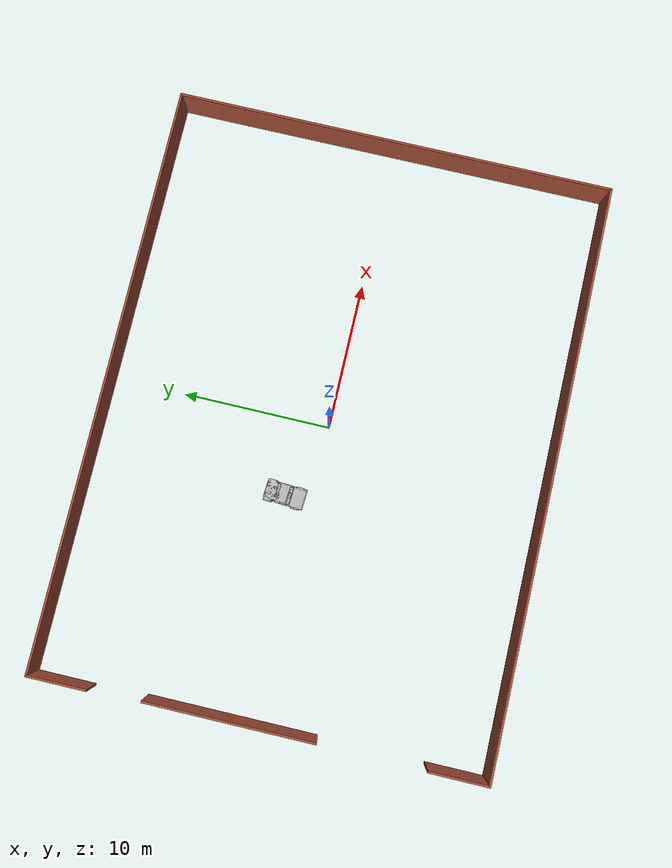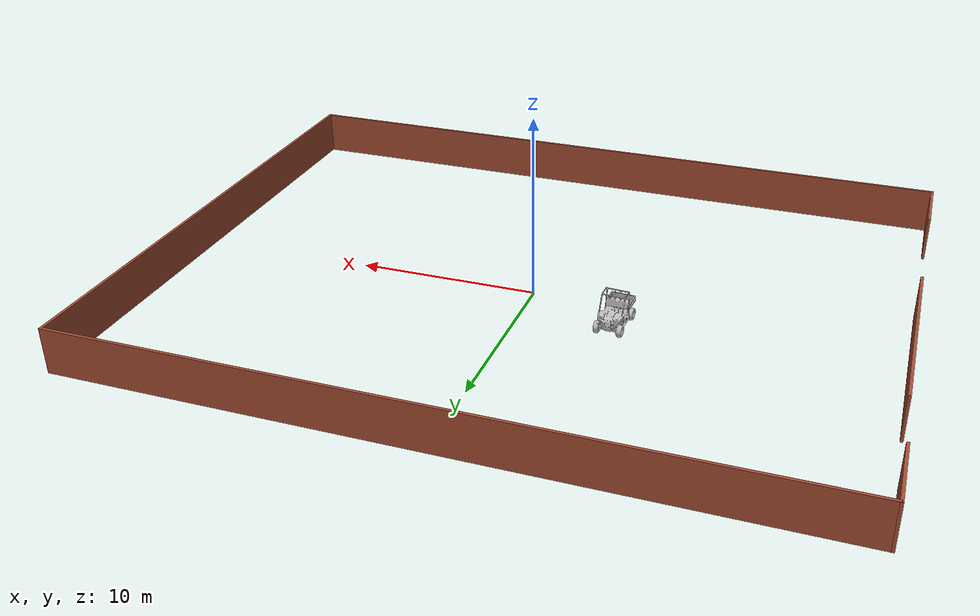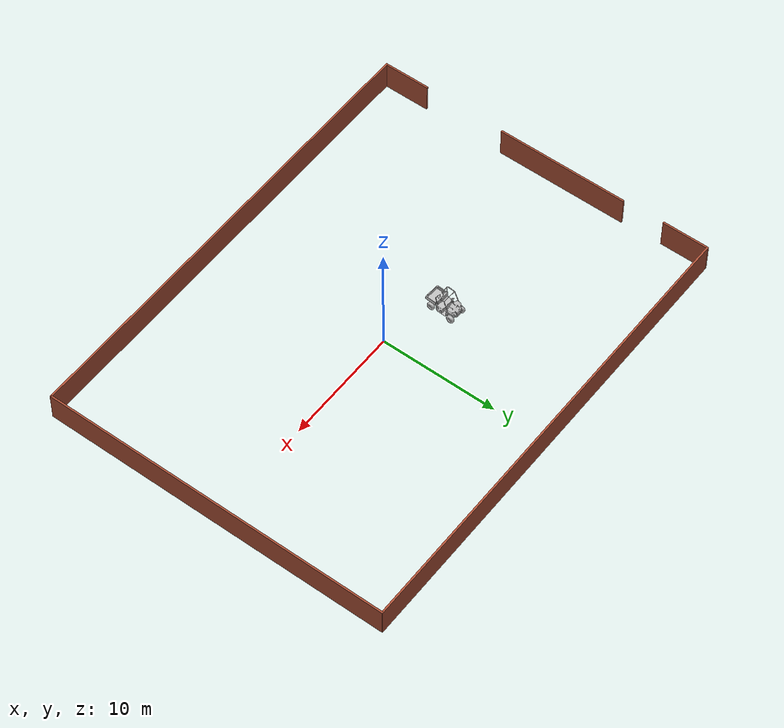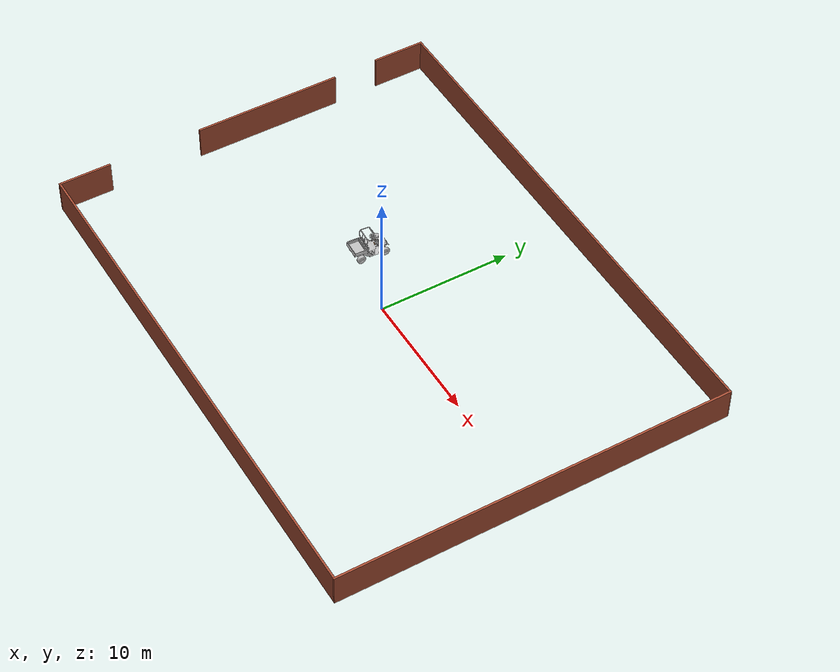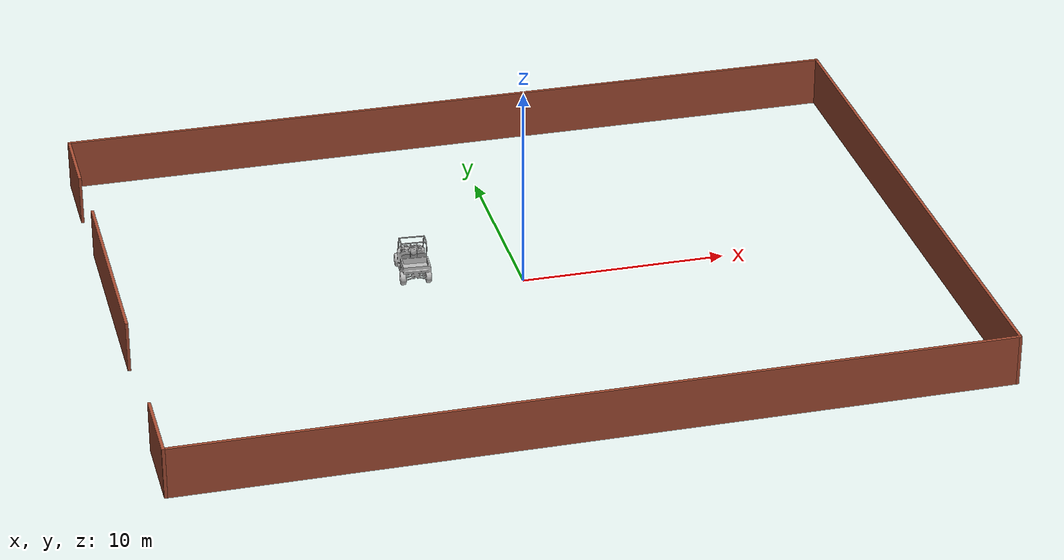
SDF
<sdf version="1.6">
 <world name="default">
  <model name="garage">
   <pose>-0.1012 0.05082 0 0 -0 0</pose>
   <link name="Wall_10">
    <collision name="Wall_10_Collision">
     <geometry><box><size>11.25 0.15 2.5</size></box></geometry>
     <pose>0 0 1.25 0 -0 0</pose>
    </collision>
    <visual name="Wall_10_Visual">
     <pose>0 0 1.25 0 -0 0</pose>
     <geometry><box><size>11.25 0.15 2.5</size></box></geometry>
     <material>
      <script><uri>file://media/materials/scripts/gazebo.material</uri><name>Gazebo/Bricks</name></script>
      <ambient>1 1 1 1</ambient>
     </material>
    </visual>
    <pose>-19.5828 1.79493 0 0 0 -1.5708</pose>
   </link>
   <link name="Wall_2">
    <collision name="Wall_2_Collision">
     <geometry><box><size>4 0.15 2.5</size></box></geometry>
     <pose>0 0 1.25 0 -0 0</pose>
    </collision>
    <visual name="Wall_2_Visual">
     <pose>0 0 1.25 0 -0 0</pose>
     <geometry><box><size>4 0.15 2.5</size></box></geometry>
     <material>
      <script><uri>file://media/materials/scripts/gazebo.material</uri><name>Gazebo/Bricks</name></script>
      <ambient>1 1 1 1</ambient>
     </material>
    </visual>
    <pose>-19.6442 -12.8901 0 0 0 -1.5708</pose>
   </link>
   <link name="Wall_3">
    <collision name="Wall_3_Collision">
     <geometry><box><size>39.5 0.15 2.5</size></box></geometry>
     <pose>0 0 1.25 0 -0 0</pose>
    </collision>
    <visual name="Wall_3_Visual">
     <pose>0 0 1.25 0 -0 0</pose>
     <geometry><box><size>39.5 0.15 2.5</size></box></geometry>
     <material>
      <script><uri>file://media/materials/scripts/gazebo.material</uri><name>Gazebo/Bricks</name></script>
      <ambient>1 1 1 1</ambient>
     </material>
    </visual>
    <pose>0.030764 -14.8151 0 0 -0 0</pose>
   </link>
   <link name="Wall_4">
    <collision name="Wall_4_Collision">
     <geometry><box><size>29.75 0.15 2.5</size></box></geometry>
     <pose>0 0 1.25 0 -0 0</pose>
    </collision>
    <visual name="Wall_4_Visual">
     <pose>0 0 1.25 0 -0 0</pose>
     <geometry><box><size>29.75 0.15 2.5</size></box></geometry>
     <material>
      <script><uri>file://media/materials/scripts/gazebo.material</uri><name>Gazebo/Bricks</name></script>
      <ambient>1 1 1 1</ambient>
     </material>
    </visual>
    <pose>19.7058 -0.015118 0 0 -0 1.5708</pose>
   </link>
   <link name="Wall_5">
    <collision name="Wall_5_Collision">
     <geometry><box><size>39.5615 0.15 2.5</size></box></geometry>
     <pose>0 0 1.25 0 -0 0</pose>
    </collision>
    <visual name="Wall_5_Visual">
     <pose>0 0 1.25 0 -0 0</pose>
     <geometry><box><size>39.5615 0.15 2.5</size></box></geometry>
     <material>
      <script><uri>file://media/materials/scripts/gazebo.material</uri><name>Gazebo/Bricks</name></script>
      <ambient>1 1 1 1</ambient>
     </material>
    </visual>
    <pose>0 14.8 0 0 -0 3.14083</pose>
   </link>
   <link name="Wall_7">
    <collision name="Wall_7_Collision">
     <geometry><box><size>4 0.15 2.5</size></box></geometry>
     <pose>0 0 1.25 0 -0 0</pose>
    </collision>
    <visual name="Wall_7_Visual">
     <pose>0 0 1.25 0 -0 0</pose>
     <geometry><box><size>4 0.15 2.5</size></box></geometry>
     <material>
      <script><uri>file://media/materials/scripts/gazebo.material</uri><name>Gazebo/Bricks</name></script>
      <ambient>1 1 1 1</ambient>
     </material>
    </visual>
    <pose>-19.7058 12.8901 0 0 0 -1.5708</pose>
   </link>
   <static>1</static>
  </model>
  <model name="polaris_ranger_ev_clone_1_clone_clone_clone_clone_0">
   <static>true</static>
   <link name="chassis">
    <inertial>
     <mass>720</mass>
     <inertia><ixx>140</ixx><ixy>0</ixy><iyy>550</iyy><ixz>0</ixz><iyz>0</iyz><izz>550</izz></inertia>
    </inertial>
    <visual name="visual">
     <pose>0 0 0 0 0 -1.5708</pose>
     <geometry><mesh><uri>model://polaris_ranger_ev/meshes/polaris.dae</uri><scale>1 1 1</scale></mesh></geometry>
     <material>
      <script>
       <uri>model://polaris_ranger_ev/materials/scripts</uri>
       <uri>model://polaris_ranger_ev/materials/textures</uri>
       <name>Polaris/Diffuse</name>
      </script>
     </material>
    </visual>
    <collision name="chassis_bottom">
     <pose>0 0 0.35 0 -0 0</pose>
     <geometry><box><size>2 1 0.1</size></box></geometry>
    </collision>
    <collision name="cargo_bottom">
     <pose>-0.9 0 0.9 0 -0 0</pose>
     <geometry><box><size>0.9 1.2 0.01</size></box></geometry>
    </collision>
    <collision name="cargo_front">
     <pose>-0.45 0 1.025 0 -0 0</pose>
     <geometry><box><size>0.05 1.2 0.25</size></box></geometry>
    </collision>
    <collision name="cargo_back">
     <pose>-1.35 0 1.025 0 -0 0</pose>
     <geometry><box><size>0.05 1.2 0.25</size></box></geometry>
    </collision>
    <collision name="cargo_left">
     <pose>-0.9 0.6 1.025 0 -0 0</pose>
     <geometry><box><size>0.9 0.05 0.25</size></box></geometry>
    </collision>
    <collision name="cargo_right">
     <pose>-0.9 -0.6 1.025 0 -0 0</pose>
     <geometry><box><size>0.9 0.05 0.25</size></box></geometry>
    </collision>
    <collision name="seat">
     <pose>-0.1 0 0.625 0 -0 0</pose>
     <geometry><box><size>0.6 1 0.65</size></box></geometry>
    </collision>
    <collision name="seat_back">
     <pose>-0.3 0 1.125 0 -0.2 0</pose>
     <geometry><box><size>0.1 1 0.4</size></box></geometry>
    </collision>
    <collision name="engine">
     <pose>0.95 0 0.7 0 -0 0</pose>
     <geometry><box><size>0.58 1 0.8</size></box></geometry>
    </collision>
    <collision name="steering_column">
     <pose>0.525 0.3 1.025 0 -0.8 0</pose>
     <geometry><cylinder><radius>0.05</radius><length>0.45</length></cylinder></geometry>
    </collision>
   </link>
   <link name="rear_right_wheel">
    <pose>-0.85 -0.6 0.32 1.5708 -0 0</pose>
    <inertial>
     <mass>12</mass>
     <inertia><ixx>0.5</ixx><ixy>0</ixy><iyy>0.5</iyy><ixz>0</ixz><iyz>0</iyz><izz>1</izz></inertia>
    </inertial>
    <collision name="collision">
     <geometry><cylinder><radius>0.32</radius><length>0.23</length></cylinder></geometry>
     <surface>
      <friction><ode><mu>100000</mu><mu2>100000</mu2><slip1>0</slip1><slip2>0</slip2></ode></friction>
     </surface>
    </collision>
   </link>
   <joint name="rear_right_wheel_joint" type="revolute">
    <pose>0 0 -0.1 0 -0 0</pose>
    <child>rear_right_wheel</child>
    <parent>chassis</parent>
    <axis>
     <xyz>0 1 0</xyz>
     <use_parent_model_frame>1</use_parent_model_frame>
     <limit><lower>-1e+16</lower><upper>1e+16</upper></limit>
     <dynamics><spring_reference>0</spring_reference><spring_stiffness>0</spring_stiffness></dynamics>
    </axis>
    <physics><ode><limit><cfm>0</cfm><erp>0.9</erp></limit></ode></physics>
   </joint>
   <link name="rear_left_wheel">
    <pose>-0.85 0.6 0.32 1.5708 -0 0</pose>
    <inertial>
     <mass>12</mass>
     <inertia><ixx>0.5</ixx><ixy>0</ixy><iyy>0.5</iyy><ixz>0</ixz><iyz>0</iyz><izz>1</izz></inertia>
    </inertial>
    <collision name="collision">
     <geometry><cylinder><radius>0.32</radius><length>0.23</length></cylinder></geometry>
     <surface>
      <friction><ode><mu>100000</mu><mu2>100000</mu2><slip1>0</slip1><slip2>0</slip2></ode></friction>
     </surface>
    </collision>
   </link>
   <joint name="rear_left_wheel_joint" type="revolute">
    <child>rear_left_wheel</child>
    <parent>chassis</parent>
    <axis>
     <xyz>0 1 0</xyz>
     <use_parent_model_frame>1</use_parent_model_frame>
     <limit><lower>-1e+16</lower><upper>1e+16</upper></limit>
     <dynamics><spring_reference>0</spring_reference><spring_stiffness>0</spring_stiffness></dynamics>
    </axis>
    <physics><ode><limit><cfm>0</cfm><erp>0.9</erp></limit></ode></physics>
   </joint>
   <link name="front_right_wheel">
    <pose>1.03 -0.6 0.32 1.5708 -0 0</pose>
    <inertial>
     <mass>12</mass>
     <inertia><ixx>0.5</ixx><ixy>0</ixy><iyy>0.5</iyy><ixz>0</ixz><iyz>0</iyz><izz>1</izz></inertia>
    </inertial>
    <collision name="collision">
     <geometry><cylinder><radius>0.32</radius><length>0.23</length></cylinder></geometry>
     <surface>
      <friction><ode><mu>100000</mu><mu2>100000</mu2><slip1>0</slip1><slip2>0</slip2></ode></friction>
     </surface>
    </collision>
   </link>
   <link name="front_right_wheel_steering_block">
    <pose>1.03 -0.5 0.32 1.5708 -0 0</pose>
    <inertial>
     <mass>1</mass>
     <inertia><ixx>1</ixx><ixy>0</ixy><iyy>1</iyy><ixz>0</ixz><iyz>0</iyz><izz>1</izz></inertia>
    </inertial>
    <collision name="collision">
     <geometry><cylinder><radius>0.05</radius><length>0.01</length></cylinder></geometry>
    </collision>
   </link>
   <joint name="front_right_steering_joint" type="revolute">
    <child>front_right_wheel_steering_block</child>
    <parent>chassis</parent>
    <axis>
     <xyz>0 0 1</xyz>
     <limit><lower>-1</lower><upper>1</upper></limit>
     <use_parent_model_frame>1</use_parent_model_frame>
     <dynamics><spring_reference>0</spring_reference><spring_stiffness>0</spring_stiffness></dynamics>
    </axis>
    <physics><ode><limit><cfm>0</cfm><erp>0.9</erp></limit></ode></physics>
   </joint>
   <joint name="front_right_wheel_joint" type="revolute">
    <child>front_right_wheel</child>
    <parent>front_right_wheel_steering_block</parent>
    <axis>
     <xyz>0 1 0</xyz>
     <use_parent_model_frame>1</use_parent_model_frame>
     <limit><lower>-1e+16</lower><upper>1e+16</upper></limit>
     <dynamics><spring_reference>0</spring_reference><spring_stiffness>0</spring_stiffness></dynamics>
    </axis>
    <physics><ode><limit><cfm>0</cfm><erp>0.9</erp></limit></ode></physics>
   </joint>
   <link name="front_left_wheel">
    <pose>1.03 0.6 0.32 1.5708 -0 0</pose>
    <inertial>
     <mass>12</mass>
     <inertia><ixx>0.5</ixx><ixy>0</ixy><iyy>0.5</iyy><ixz>0</ixz><iyz>0</iyz><izz>1</izz></inertia>
    </inertial>
    <collision name="collision">
     <geometry><cylinder><radius>0.32</radius><length>0.23</length></cylinder></geometry>
     <surface>
      <friction><ode><mu>100000</mu><mu2>100000</mu2><slip1>0</slip1><slip2>0</slip2></ode></friction>
     </surface>
    </collision>
   </link>
   <link name="front_left_wheel_steering_block">
    <pose>1.03 0.5 0.32 1.5708 -0 0</pose>
    <inertial>
     <mass>1</mass>
     <inertia><ixx>1</ixx><ixy>0</ixy><iyy>1</iyy><ixz>0</ixz><iyz>0</iyz><izz>1</izz></inertia>
    </inertial>
    <collision name="collision">
     <geometry><cylinder><radius>0.05</radius><length>0.01</length></cylinder></geometry>
    </collision>
   </link>
   <joint name="front_left_steering_joint" type="revolute">
    <child>front_left_wheel_steering_block</child>
    <parent>chassis</parent>
    <axis>
     <xyz>0 0 1</xyz>
     <limit><lower>-1</lower><upper>1</upper></limit>
     <use_parent_model_frame>1</use_parent_model_frame>
     <dynamics><spring_reference>0</spring_reference><spring_stiffness>0</spring_stiffness></dynamics>
    </axis>
    <physics><ode><limit><cfm>0</cfm><erp>0.9</erp></limit></ode></physics>
   </joint>
   <joint name="front_left_wheel_joint" type="revolute">
    <child>front_left_wheel</child>
    <parent>front_left_wheel_steering_block</parent>
    <axis>
     <xyz>0 1 0</xyz>
     <use_parent_model_frame>1</use_parent_model_frame>
     <limit><lower>-1e+16</lower><upper>1e+16</upper></limit>
     <dynamics><spring_reference>0</spring_reference><spring_stiffness>0</spring_stiffness></dynamics>
    </axis>
    <physics><ode><limit><cfm>0</cfm><erp>0.9</erp></limit></ode></physics>
   </joint>
   <link name="gas_pedal">
    <pose>0.53 0.14 0.56 0 -1 0</pose>
    <gravity>0</gravity>
    <inertial>
     <mass>0.1</mass>
     <inertia><ixx>0.01</ixx><ixy>0</ixy><ixz>0</ixz><iyy>0.01</iyy><iyz>0</iyz><izz>0.01</izz></inertia>
    </inertial>
    <collision name="gas_pedal_collision"><geometry><box><size>0.12 0.07 0.03</size></box></geometry></collision>
    <visual name="gas_pedal_visual">
     <geometry><box><size>0.12 0.07 0.03</size></box></geometry>
     <material>
      <script><uri>file://media/materials/scripts/gazebo.material</uri><name>Gazebo/Wood</name></script>
      <ambient>0.2 0.2 0.2 1</ambient>
      <diffuse>0.2 0.2 0.2 1</diffuse>
      <specular>0.2 0.2 0.2 1</specular>
      <emissive>0.5 0.5 0.5 1</emissive>
     </material>
    </visual>
   </link>
   <link name="brake_pedal">
    <gravity>0</gravity>
    <pose>0.54 0.27 0.58 0 -1 0</pose>
    <inertial>
     <mass>0.1</mass>
     <inertia><ixx>0.01</ixx><ixy>0</ixy><ixz>0</ixz><iyy>0.01</iyy><iyz>0</iyz><izz>0.01</izz></inertia>
    </inertial>
    <collision name="brake_pedal_collision">
     <geometry><box><size>0.06 0.08 0.03</size></box></geometry>
    </collision>
    <visual name="brake_pedal_visual">
     <geometry><box><size>0.06 0.08 0.03</size></box></geometry>
     <material>
      <script><uri>file://media/materials/scripts/gazebo.material</uri><name>Gazebo/Wood</name></script>
      <ambient>0.2 0.2 0.2 1</ambient>
      <diffuse>0.2 0.2 0.2 1</diffuse>
      <specular>0.2 0.2 0.2 1</specular>
      <emissive>0.5 0.5 0.5 1</emissive>
     </material>
    </visual>
   </link>
   <link name="steering_wheel">
    <pose>0.37 0.3 1.2 0 -0.8 0</pose>
    <inertial>
     <mass>1</mass>
     <inertia><ixx>0.1</ixx><ixy>0</ixy><ixz>0</ixz><iyy>0.1</iyy><iyz>0</iyz><izz>1</izz></inertia>
    </inertial>
    <collision name="steering_wheel_post_left">
     <pose>0 0.08 0 1.5708 -0 0</pose>
     <geometry><cylinder><radius>0.02</radius><length>0.15</length></cylinder></geometry>
    </collision>
    <collision name="steering_wheel_post_right">
     <pose>0 -0.08 0 1.5708 -0 0</pose>
     <geometry><cylinder><radius>0.02</radius><length>0.15</length></cylinder></geometry>
    </collision>
    <collision name="steering_wheel_post_middle">
     <pose>-0.08 0 0 3.14159 1.57079 3.14159</pose>
     <geometry><cylinder><radius>0.02</radius><length>0.15</length></cylinder></geometry>
    </collision>
    <collision name="collision00">
     <pose>0.15 0 0 3.14159 1.57079 -1.57079</pose>
     <geometry><cylinder><length>0.105066</length><radius>0.01</radius></cylinder></geometry>
    </collision>
    <collision name="collision01">
     <pose>0.121353 0.088168 0 3.14159 1.57079 -0.942483</pose>
     <geometry><cylinder><length>0.105066</length><radius>0.01</radius></cylinder></geometry>
    </collision>
    <collision name="collision02">
     <pose>0.046353 0.142658 0 3.14159 1.57079 -0.314163</pose>
     <geometry><cylinder><length>0.105066</length><radius>0.01</radius></cylinder></geometry>
    </collision>
    <collision name="collision03">
     <pose>-0.046353 0.142658 0 3.14159 1.57079 0.314163</pose>
     <geometry><cylinder><length>0.105066</length><radius>0.01</radius></cylinder></geometry>
    </collision>
    <collision name="collision04">
     <pose>-0.121353 0.088168 0 -3.14159 1.57079 0.942483</pose>
     <geometry><cylinder><length>0.105066</length><radius>0.01</radius></cylinder></geometry>
    </collision>
    <collision name="collision05">
     <pose>-0.15 0 0 -3.14159 1.57079 1.57079</pose>
     <geometry><cylinder><length>0.105066</length><radius>0.01</radius></cylinder></geometry>
    </collision>
    <collision name="collision06">
     <pose>-0.121353 -0.088168 0 3.14159 1.57079 2.19912</pose>
     <geometry><cylinder><length>0.105066</length><radius>0.01</radius></cylinder></geometry>
    </collision>
    <collision name="collision07">
     <pose>-0.046353 -0.142658 0 -3.14159 1.57079 2.82743</pose>
     <geometry><cylinder><length>0.105066</length><radius>0.01</radius></cylinder></geometry>
    </collision>
    <collision name="collision08">
     <pose>0.046353 -0.142658 0 3.14159 1.57079 -2.82743</pose>
     <geometry><cylinder><length>0.105066</length><radius>0.01</radius></cylinder></geometry>
    </collision>
    <collision name="collision09">
     <pose>0.121353 -0.088168 0 -3.14159 1.57079 -2.19911</pose>
     <geometry><cylinder><length>0.105066</length><radius>0.01</radius></cylinder></geometry>
    </collision>
   </link>
   <link name="hand_brake">
    <pose>0.5 0 1.05 3.14159 -0.058407 3.14159</pose>
    <inertial>
     <mass>1</mass>
     <pose>0 0 -0.15 0 -0 0</pose>
     <inertia><ixx>0.1</ixx><ixy>0</ixy><ixz>0</ixz><iyy>0.1</iyy><iyz>0</iyz><izz>1</izz></inertia>
    </inertial>
    <collision name="hand_brake_collision">
     <pose>0 0 -0.1 0 -0 0</pose>
     <geometry><cylinder><radius>0.01</radius><length>0.2</length></cylinder></geometry>
    </collision>
    <visual name="hand_brake_visual">
     <pose>0 0 -0.1 0 -0 0</pose>
     <geometry><cylinder><radius>0.01</radius><length>0.2</length></cylinder></geometry>
     <material>
      <script><uri>file://media/materials/scripts/gazebo.material</uri><name>Gazebo/Wood</name></script>
     </material>
    </visual>
   </link>
   <joint name="gas_joint" type="prismatic">
    <parent>chassis</parent>
    <child>gas_pedal</child>
    <axis>
     <xyz>1 0 -1</xyz>
     <limit><lower>0</lower><upper>0.15</upper></limit>
     <use_parent_model_frame>1</use_parent_model_frame>
     <dynamics><spring_reference>0</spring_reference><spring_stiffness>0</spring_stiffness></dynamics>
    </axis>
   </joint>
   <joint name="brake_joint" type="prismatic">
    <parent>chassis</parent>
    <child>brake_pedal</child>
    <axis>
     <xyz>1 0 -0.6</xyz>
     <limit><lower>0</lower><upper>0.15</upper></limit>
     <use_parent_model_frame>1</use_parent_model_frame>
     <dynamics><spring_reference>0</spring_reference><spring_stiffness>0</spring_stiffness></dynamics>
    </axis>
   </joint>
   <joint name="steering_joint" type="revolute">
    <pose>0 0 0 1.5708 -0.8 0</pose>
    <parent>chassis</parent>
    <child>steering_wheel</child>
    <axis>
     <xyz>-1 0 1.023</xyz>
     <limit><lower>-7.853</lower><upper>7.853</upper></limit>
     <use_parent_model_frame>1</use_parent_model_frame>
     <dynamics><spring_reference>0</spring_reference><spring_stiffness>0</spring_stiffness></dynamics>
    </axis>
   </joint>
   <joint name="hand_brake_joint" type="revolute">
    <parent>chassis</parent>
    <child>hand_brake</child>
    <axis>
     <xyz>0 -1 0</xyz>
     <limit><lower>0</lower><upper>0.6</upper></limit>
     <use_parent_model_frame>1</use_parent_model_frame>
     <dynamics><spring_reference>0</spring_reference><spring_stiffness>0</spring_stiffness></dynamics>
    </axis>
   </joint>
   <pose>-5.04112 1.86283 -4.4e-05 -0 5e-05 1.5057</pose>
  </model>
 </world>
</sdf>
